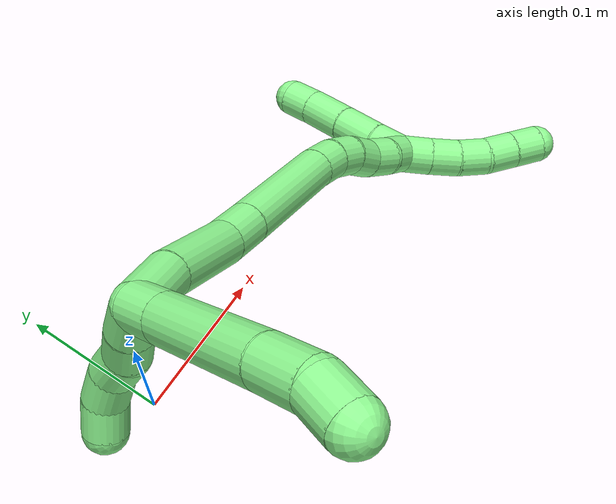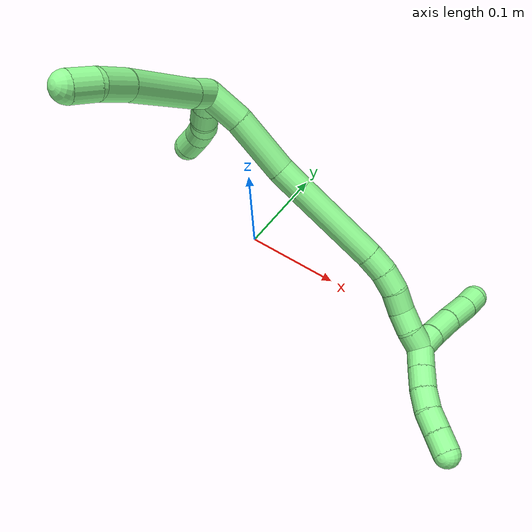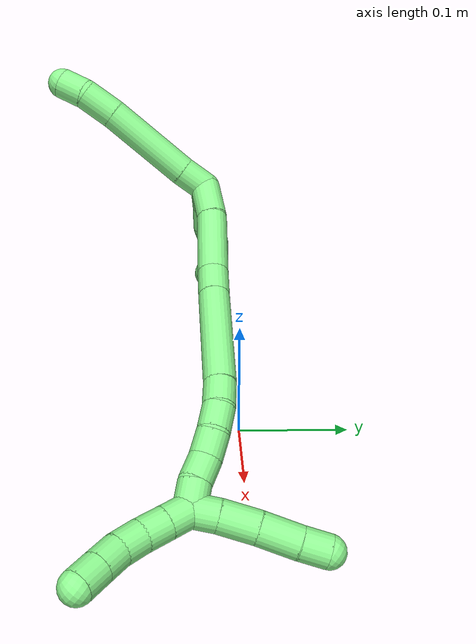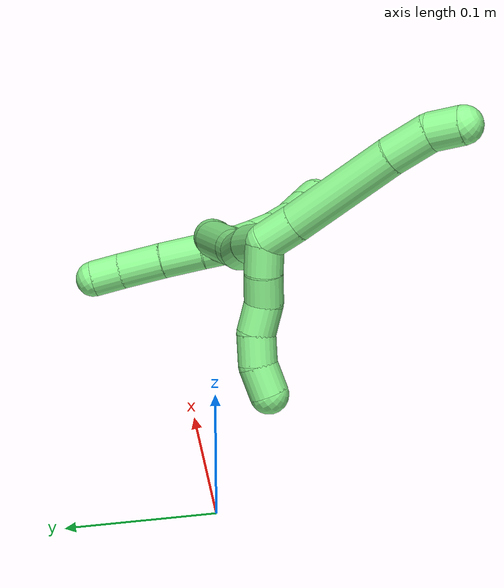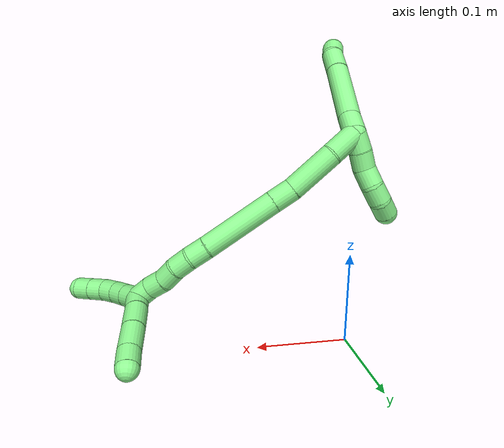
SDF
<sdf version="1.7">
 <world name="default">
  <model name="13">
   <static>0</static>
   <link name="13">
    <collision name="collision-cylinder-e_1_2_8">
     <pose>0.001093 -0.000503 0.011849 0.042415 0.091886 0.00195</pose>
     <geometry><cylinder><radius>0.0125</radius><length>0.02382</length></cylinder></geometry>
     <surface>
      <friction><ode><mu>1.16</mu><mu2>1.16</mu2><slip1>0</slip1><slip2>0</slip2></ode></friction>
      <contact><ode><kp>1e+06</kp><kd>1</kd><max_vel>0</max_vel><min_depth>0.001</min_depth></ode></contact>
     </surface>
    </collision>
    <visual name="visual-cylinder-e_1_2_8">
     <pose>0.001093 -0.000503 0.011849 0.042415 0.091886 0.00195</pose>
     <geometry><cylinder><radius>0.0125</radius><length>0.02382</length></cylinder></geometry>
     <material><ambient>0.564706 0.984314 0.572549 1</ambient></material>
    </visual>
    <collision name="collision-cylinder-e_2_8_9">
     <pose>0.004259 -0.000279 0.061245 -0.019352 0.055145 -0.000534</pose>
     <geometry><cylinder><radius>0.0125</radius><length>0.075223</length></cylinder></geometry>
     <surface>
      <friction><ode><mu>1.16</mu><mu2>1.16</mu2><slip1>0</slip1><slip2>0</slip2></ode></friction>
      <contact><ode><kp>1e+06</kp><kd>1</kd><max_vel>0</max_vel><min_depth>0.001</min_depth></ode></contact>
     </surface>
    </collision>
    <visual name="visual-cylinder-e_2_8_9">
     <pose>0.004259 -0.000279 0.061245 -0.019352 0.055145 -0.000534</pose>
     <geometry><cylinder><radius>0.0125</radius><length>0.075223</length></cylinder></geometry>
     <material><ambient>0.564706 0.984314 0.572549 1</ambient></material>
    </visual>
    <collision name="collision-cylinder-e_3_9_10">
     <pose>0.007328 -0.000337 0.11323 0.05432 0.06877 0.001869</pose>
     <geometry><cylinder><radius>0.0125</radius><length>0.028986</length></cylinder></geometry>
     <surface>
      <friction><ode><mu>1.16</mu><mu2>1.16</mu2><slip1>0</slip1><slip2>0</slip2></ode></friction>
      <contact><ode><kp>1e+06</kp><kd>1</kd><max_vel>0</max_vel><min_depth>0.001</min_depth></ode></contact>
     </surface>
    </collision>
    <visual name="visual-cylinder-e_3_9_10">
     <pose>0.007328 -0.000337 0.11323 0.05432 0.06877 0.001869</pose>
     <geometry><cylinder><radius>0.0125</radius><length>0.028986</length></cylinder></geometry>
     <material><ambient>0.564706 0.984314 0.572549 1</ambient></material>
    </visual>
    <collision name="collision-cylinder-e_4_10_6">
     <pose>0.006754 -0.004394 0.138037 0.305619 -0.14335 -0.022114</pose>
     <geometry><cylinder><radius>0.0125</radius><length>0.021971</length></cylinder></geometry>
     <surface>
      <friction><ode><mu>1.16</mu><mu2>1.16</mu2><slip1>0</slip1><slip2>0</slip2></ode></friction>
      <contact><ode><kp>1e+06</kp><kd>1</kd><max_vel>0</max_vel><min_depth>0.001</min_depth></ode></contact>
     </surface>
    </collision>
    <visual name="visual-cylinder-e_4_10_6">
     <pose>0.006754 -0.004394 0.138037 0.305619 -0.14335 -0.022114</pose>
     <geometry><cylinder><radius>0.0125</radius><length>0.021971</length></cylinder></geometry>
     <material><ambient>0.564706 0.984314 0.572549 1</ambient></material>
    </visual>
    <collision name="collision-cylinder-e_1_2_11">
     <pose>-0.002801 -0.007389 -0.006129 2.26324 -0.283888 -0.59061</pose>
     <geometry><cylinder><radius>0.0125</radius><length>0.02</length></cylinder></geometry>
     <surface>
      <friction><ode><mu>1.16</mu><mu2>1.16</mu2><slip1>0</slip1><slip2>0</slip2></ode></friction>
      <contact><ode><kp>1e+06</kp><kd>1</kd><max_vel>0</max_vel><min_depth>0.001</min_depth></ode></contact>
     </surface>
    </collision>
    <visual name="visual-cylinder-e_1_2_11">
     <pose>-0.002801 -0.007389 -0.006129 2.26324 -0.283888 -0.59061</pose>
     <geometry><cylinder><radius>0.0125</radius><length>0.02</length></cylinder></geometry>
     <material><ambient>0.564706 0.984314 0.572549 1</ambient></material>
    </visual>
    <collision name="collision-cylinder-e_2_11_12">
     <pose>-0.007523 -0.022636 -0.018135 2.21299 -0.19336 -0.382562</pose>
     <geometry><cylinder><radius>0.0125</radius><length>0.02</length></cylinder></geometry>
     <surface>
      <friction><ode><mu>1.16</mu><mu2>1.16</mu2><slip1>0</slip1><slip2>0</slip2></ode></friction>
      <contact><ode><kp>1e+06</kp><kd>1</kd><max_vel>0</max_vel><min_depth>0.001</min_depth></ode></contact>
     </surface>
    </collision>
    <visual name="visual-cylinder-e_2_11_12">
     <pose>-0.007523 -0.022636 -0.018135 2.21299 -0.19336 -0.382562</pose>
     <geometry><cylinder><radius>0.0125</radius><length>0.02</length></cylinder></geometry>
     <material><ambient>0.564706 0.984314 0.572549 1</ambient></material>
    </visual>
    <collision name="collision-cylinder-e_3_12_13">
     <pose>-0.013139 -0.036199 -0.031349 2.48068 -0.378342 -1.01813</pose>
     <geometry><cylinder><radius>0.0125</radius><length>0.02</length></cylinder></geometry>
     <surface>
      <friction><ode><mu>1.16</mu><mu2>1.16</mu2><slip1>0</slip1><slip2>0</slip2></ode></friction>
      <contact><ode><kp>1e+06</kp><kd>1</kd><max_vel>0</max_vel><min_depth>0.001</min_depth></ode></contact>
     </surface>
    </collision>
    <visual name="visual-cylinder-e_3_12_13">
     <pose>-0.013139 -0.036199 -0.031349 2.48068 -0.378342 -1.01813</pose>
     <geometry><cylinder><radius>0.0125</radius><length>0.02</length></cylinder></geometry>
     <material><ambient>0.564706 0.984314 0.572549 1</ambient></material>
    </visual>
    <collision name="collision-cylinder-e_4_13_14">
     <pose>-0.021056 -0.04948 -0.043662 2.15198 -0.436 -0.779125</pose>
     <geometry><cylinder><radius>0.0125</radius><length>0.02</length></cylinder></geometry>
     <surface>
      <friction><ode><mu>1.16</mu><mu2>1.16</mu2><slip1>0</slip1><slip2>0</slip2></ode></friction>
      <contact><ode><kp>1e+06</kp><kd>1</kd><max_vel>0</max_vel><min_depth>0.001</min_depth></ode></contact>
     </surface>
    </collision>
    <visual name="visual-cylinder-e_4_13_14">
     <pose>-0.021056 -0.04948 -0.043662 2.15198 -0.436 -0.779125</pose>
     <geometry><cylinder><radius>0.0125</radius><length>0.02</length></cylinder></geometry>
     <material><ambient>0.564706 0.984314 0.572549 1</ambient></material>
    </visual>
    <collision name="collision-cylinder-e_5_14_5">
     <pose>-0.029232 -0.065975 -0.050834 1.81223 -0.406388 -0.514212</pose>
     <geometry><cylinder><radius>0.0125</radius><length>0.02</length></cylinder></geometry>
     <surface>
      <friction><ode><mu>1.16</mu><mu2>1.16</mu2><slip1>0</slip1><slip2>0</slip2></ode></friction>
      <contact><ode><kp>1e+06</kp><kd>1</kd><max_vel>0</max_vel><min_depth>0.001</min_depth></ode></contact>
     </surface>
    </collision>
    <visual name="visual-cylinder-e_5_14_5">
     <pose>-0.029232 -0.065975 -0.050834 1.81223 -0.406388 -0.514212</pose>
     <geometry><cylinder><radius>0.0125</radius><length>0.02</length></cylinder></geometry>
     <material><ambient>0.564706 0.984314 0.572549 1</ambient></material>
    </visual>
    <collision name="collision-cylinder-e_1_2_15">
     <pose>0.013045 -0.003767 -0.010164 2.78662 0.877476 2.41135</pose>
     <geometry><cylinder><radius>0.0125</radius><length>0.033921</length></cylinder></geometry>
     <surface>
      <friction><ode><mu>1.16</mu><mu2>1.16</mu2><slip1>0</slip1><slip2>0</slip2></ode></friction>
      <contact><ode><kp>1e+06</kp><kd>1</kd><max_vel>0</max_vel><min_depth>0.001</min_depth></ode></contact>
     </surface>
    </collision>
    <visual name="visual-cylinder-e_1_2_15">
     <pose>0.013045 -0.003767 -0.010164 2.78662 0.877476 2.41135</pose>
     <geometry><cylinder><radius>0.0125</radius><length>0.033921</length></cylinder></geometry>
     <material><ambient>0.564706 0.984314 0.572549 1</ambient></material>
    </visual>
    <collision name="collision-cylinder-e_2_15_16">
     <pose>0.047834 -0.017489 -0.034395 2.52582 0.9006 1.9779</pose>
     <geometry><cylinder><radius>0.0125</radius><length>0.05549</length></cylinder></geometry>
     <surface>
      <friction><ode><mu>1.16</mu><mu2>1.16</mu2><slip1>0</slip1><slip2>0</slip2></ode></friction>
      <contact><ode><kp>1e+06</kp><kd>1</kd><max_vel>0</max_vel><min_depth>0.001</min_depth></ode></contact>
     </surface>
    </collision>
    <visual name="visual-cylinder-e_2_15_16">
     <pose>0.047834 -0.017489 -0.034395 2.52582 0.9006 1.9779</pose>
     <geometry><cylinder><radius>0.0125</radius><length>0.05549</length></cylinder></geometry>
     <material><ambient>0.564706 0.984314 0.572549 1</ambient></material>
    </visual>
    <collision name="collision-cylinder-e_3_16_17">
     <pose>0.080192 -0.030353 -0.054033 2.66005 1.0363 2.32825</pose>
     <geometry><cylinder><radius>0.0125</radius><length>0.024671</length></cylinder></geometry>
     <surface>
      <friction><ode><mu>1.16</mu><mu2>1.16</mu2><slip1>0</slip1><slip2>0</slip2></ode></friction>
      <contact><ode><kp>1e+06</kp><kd>1</kd><max_vel>0</max_vel><min_depth>0.001</min_depth></ode></contact>
     </surface>
    </collision>
    <visual name="visual-cylinder-e_3_16_17">
     <pose>0.080192 -0.030353 -0.054033 2.66005 1.0363 2.32825</pose>
     <geometry><cylinder><radius>0.0125</radius><length>0.024671</length></cylinder></geometry>
     <material><ambient>0.564706 0.984314 0.572549 1</ambient></material>
    </visual>
    <collision name="collision-cylinder-e_4_17_18">
     <pose>0.126958 -0.043073 -0.079482 2.68321 1.0207 2.3519</pose>
     <geometry><cylinder><radius>0.0125</radius><length>0.084813</length></cylinder></geometry>
     <surface>
      <friction><ode><mu>1.16</mu><mu2>1.16</mu2><slip1>0</slip1><slip2>0</slip2></ode></friction>
      <contact><ode><kp>1e+06</kp><kd>1</kd><max_vel>0</max_vel><min_depth>0.001</min_depth></ode></contact>
     </surface>
    </collision>
    <visual name="visual-cylinder-e_4_17_18">
     <pose>0.126958 -0.043073 -0.079482 2.68321 1.0207 2.3519</pose>
     <geometry><cylinder><radius>0.0125</radius><length>0.084813</length></cylinder></geometry>
     <material><ambient>0.564706 0.984314 0.572549 1</ambient></material>
    </visual>
    <collision name="collision-cylinder-e_5_18_19">
     <pose>0.172205 -0.055899 -0.103515 2.51326 1.05717 2.12616</pose>
     <geometry><cylinder><radius>0.0125</radius><length>0.020888</length></cylinder></geometry>
     <surface>
      <friction><ode><mu>1.16</mu><mu2>1.16</mu2><slip1>0</slip1><slip2>0</slip2></ode></friction>
      <contact><ode><kp>1e+06</kp><kd>1</kd><max_vel>0</max_vel><min_depth>0.001</min_depth></ode></contact>
     </surface>
    </collision>
    <visual name="visual-cylinder-e_5_18_19">
     <pose>0.172205 -0.055899 -0.103515 2.51326 1.05717 2.12616</pose>
     <geometry><cylinder><radius>0.0125</radius><length>0.020888</length></cylinder></geometry>
     <material><ambient>0.564706 0.984314 0.572549 1</ambient></material>
    </visual>
    <collision name="collision-cylinder-e_6_19_20">
     <pose>0.189648 -0.063535 -0.110904 2.18218 0.976505 1.59154</pose>
     <geometry><cylinder><radius>0.0125</radius><length>0.020149</length></cylinder></geometry>
     <surface>
      <friction><ode><mu>1.16</mu><mu2>1.16</mu2><slip1>0</slip1><slip2>0</slip2></ode></friction>
      <contact><ode><kp>1e+06</kp><kd>1</kd><max_vel>0</max_vel><min_depth>0.001</min_depth></ode></contact>
     </surface>
    </collision>
    <visual name="visual-cylinder-e_6_19_20">
     <pose>0.189648 -0.063535 -0.110904 2.18218 0.976505 1.59154</pose>
     <geometry><cylinder><radius>0.0125</radius><length>0.020149</length></cylinder></geometry>
     <material><ambient>0.564706 0.984314 0.572549 1</ambient></material>
    </visual>
    <collision name="collision-cylinder-e_7_20_21">
     <pose>0.205064 -0.074539 -0.117281 2.02777 0.782096 1.16972</pose>
     <geometry><cylinder><radius>0.0125</radius><length>0.020059</length></cylinder></geometry>
     <surface>
      <friction><ode><mu>1.16</mu><mu2>1.16</mu2><slip1>0</slip1><slip2>0</slip2></ode></friction>
      <contact><ode><kp>1e+06</kp><kd>1</kd><max_vel>0</max_vel><min_depth>0.001</min_depth></ode></contact>
     </surface>
    </collision>
    <visual name="visual-cylinder-e_7_20_21">
     <pose>0.205064 -0.074539 -0.117281 2.02777 0.782096 1.16972</pose>
     <geometry><cylinder><radius>0.0125</radius><length>0.020059</length></cylinder></geometry>
     <material><ambient>0.564706 0.984314 0.572549 1</ambient></material>
    </visual>
    <collision name="collision-cylinder-e_8_21_22">
     <pose>0.220594 -0.086036 -0.121931 1.85807 1.00859 1.27225</pose>
     <geometry><cylinder><radius>0.0125</radius><length>0.020001</length></cylinder></geometry>
     <surface>
      <friction><ode><mu>1.16</mu><mu2>1.16</mu2><slip1>0</slip1><slip2>0</slip2></ode></friction>
      <contact><ode><kp>1e+06</kp><kd>1</kd><max_vel>0</max_vel><min_depth>0.001</min_depth></ode></contact>
     </surface>
    </collision>
    <visual name="visual-cylinder-e_8_21_22">
     <pose>0.220594 -0.086036 -0.121931 1.85807 1.00859 1.27225</pose>
     <geometry><cylinder><radius>0.0125</radius><length>0.020001</length></cylinder></geometry>
     <material><ambient>0.564706 0.984314 0.572549 1</ambient></material>
    </visual>
    <collision name="collision-cylinder-e_9_22_1">
     <pose>0.237087 -0.09591 -0.127032 2.21685 0.932209 1.58011</pose>
     <geometry><cylinder><radius>0.0125</radius><length>0.020008</length></cylinder></geometry>
     <surface>
      <friction><ode><mu>1.16</mu><mu2>1.16</mu2><slip1>0</slip1><slip2>0</slip2></ode></friction>
      <contact><ode><kp>1e+06</kp><kd>1</kd><max_vel>0</max_vel><min_depth>0.001</min_depth></ode></contact>
     </surface>
    </collision>
    <visual name="visual-cylinder-e_9_22_1">
     <pose>0.237087 -0.09591 -0.127032 2.21685 0.932209 1.58011</pose>
     <geometry><cylinder><radius>0.0125</radius><length>0.020008</length></cylinder></geometry>
     <material><ambient>0.564706 0.984314 0.572549 1</ambient></material>
    </visual>
    <collision name="collision-cylinder-e_1_1_23">
     <pose>0.24375 -0.096119 -0.139589 -2.67185 -0.135326 0.551956</pose>
     <geometry><cylinder><radius>0.0125</radius><length>0.020299</length></cylinder></geometry>
     <surface>
      <friction><ode><mu>1.16</mu><mu2>1.16</mu2><slip1>0</slip1><slip2>0</slip2></ode></friction>
      <contact><ode><kp>1e+06</kp><kd>1</kd><max_vel>0</max_vel><min_depth>0.001</min_depth></ode></contact>
     </surface>
    </collision>
    <visual name="visual-cylinder-e_1_1_23">
     <pose>0.24375 -0.096119 -0.139589 -2.67185 -0.135326 0.551956</pose>
     <geometry><cylinder><radius>0.0125</radius><length>0.020299</length></cylinder></geometry>
     <material><ambient>0.564706 0.984314 0.572549 1</ambient></material>
    </visual>
    <collision name="collision-cylinder-e_2_23_24">
     <pose>0.241442 -0.08587 -0.16168 -2.73204 -0.065511 0.312965</pose>
     <geometry><cylinder><radius>0.0125</radius><length>0.028676</length></cylinder></geometry>
     <surface>
      <friction><ode><mu>1.16</mu><mu2>1.16</mu2><slip1>0</slip1><slip2>0</slip2></ode></friction>
      <contact><ode><kp>1e+06</kp><kd>1</kd><max_vel>0</max_vel><min_depth>0.001</min_depth></ode></contact>
     </surface>
    </collision>
    <visual name="visual-cylinder-e_2_23_24">
     <pose>0.241442 -0.08587 -0.16168 -2.73204 -0.065511 0.312965</pose>
     <geometry><cylinder><radius>0.0125</radius><length>0.028676</length></cylinder></geometry>
     <material><ambient>0.564706 0.984314 0.572549 1</ambient></material>
    </visual>
    <collision name="collision-cylinder-e_3_24_25">
     <pose>0.239955 -0.074815 -0.188966 -2.77995 -0.036235 0.19758</pose>
     <geometry><cylinder><radius>0.0125</radius><length>0.030303</length></cylinder></geometry>
     <surface>
      <friction><ode><mu>1.16</mu><mu2>1.16</mu2><slip1>0</slip1><slip2>0</slip2></ode></friction>
      <contact><ode><kp>1e+06</kp><kd>1</kd><max_vel>0</max_vel><min_depth>0.001</min_depth></ode></contact>
     </surface>
    </collision>
    <visual name="visual-cylinder-e_3_24_25">
     <pose>0.239955 -0.074815 -0.188966 -2.77995 -0.036235 0.19758</pose>
     <geometry><cylinder><radius>0.0125</radius><length>0.030303</length></cylinder></geometry>
     <material><ambient>0.564706 0.984314 0.572549 1</ambient></material>
    </visual>
    <collision name="collision-cylinder-e_4_25_4">
     <pose>0.23836 -0.065639 -0.212703 -2.76202 -0.101117 0.515131</pose>
     <geometry><cylinder><radius>0.0125</radius><length>0.020723</length></cylinder></geometry>
     <surface>
      <friction><ode><mu>1.16</mu><mu2>1.16</mu2><slip1>0</slip1><slip2>0</slip2></ode></friction>
      <contact><ode><kp>1e+06</kp><kd>1</kd><max_vel>0</max_vel><min_depth>0.001</min_depth></ode></contact>
     </surface>
    </collision>
    <visual name="visual-cylinder-e_4_25_4">
     <pose>0.23836 -0.065639 -0.212703 -2.76202 -0.101117 0.515131</pose>
     <geometry><cylinder><radius>0.0125</radius><length>0.020723</length></cylinder></geometry>
     <material><ambient>0.564706 0.984314 0.572549 1</ambient></material>
    </visual>
    <collision name="collision-cylinder-e_1_1_26">
     <pose>0.252368 -0.105849 -0.126077 0.85046 0.810778 0.383913</pose>
     <geometry><cylinder><radius>0.0125</radius><length>0.02</length></cylinder></geometry>
     <surface>
      <friction><ode><mu>1.16</mu><mu2>1.16</mu2><slip1>0</slip1><slip2>0</slip2></ode></friction>
      <contact><ode><kp>1e+06</kp><kd>1</kd><max_vel>0</max_vel><min_depth>0.001</min_depth></ode></contact>
     </surface>
    </collision>
    <visual name="visual-cylinder-e_1_1_26">
     <pose>0.252368 -0.105849 -0.126077 0.85046 0.810778 0.383913</pose>
     <geometry><cylinder><radius>0.0125</radius><length>0.02</length></cylinder></geometry>
     <material><ambient>0.564706 0.984314 0.572549 1</ambient></material>
    </visual>
    <collision name="collision-cylinder-e_2_26_27">
     <pose>0.26703 -0.11592 -0.116939 0.816916 0.835066 0.379377</pose>
     <geometry><cylinder><radius>0.0125</radius><length>0.02</length></cylinder></geometry>
     <surface>
      <friction><ode><mu>1.16</mu><mu2>1.16</mu2><slip1>0</slip1><slip2>0</slip2></ode></friction>
      <contact><ode><kp>1e+06</kp><kd>1</kd><max_vel>0</max_vel><min_depth>0.001</min_depth></ode></contact>
     </surface>
    </collision>
    <visual name="visual-cylinder-e_2_26_27">
     <pose>0.26703 -0.11592 -0.116939 0.816916 0.835066 0.379377</pose>
     <geometry><cylinder><radius>0.0125</radius><length>0.02</length></cylinder></geometry>
     <material><ambient>0.564706 0.984314 0.572549 1</ambient></material>
    </visual>
    <collision name="collision-cylinder-e_3_27_28">
     <pose>0.282667 -0.124816 -0.108303 0.780512 0.9656 0.42474</pose>
     <geometry><cylinder><radius>0.0125</radius><length>0.02</length></cylinder></geometry>
     <surface>
      <friction><ode><mu>1.16</mu><mu2>1.16</mu2><slip1>0</slip1><slip2>0</slip2></ode></friction>
      <contact><ode><kp>1e+06</kp><kd>1</kd><max_vel>0</max_vel><min_depth>0.001</min_depth></ode></contact>
     </surface>
    </collision>
    <visual name="visual-cylinder-e_3_27_28">
     <pose>0.282667 -0.124816 -0.108303 0.780512 0.9656 0.42474</pose>
     <geometry><cylinder><radius>0.0125</radius><length>0.02</length></cylinder></geometry>
     <material><ambient>0.564706 0.984314 0.572549 1</ambient></material>
    </visual>
    <collision name="collision-cylinder-e_4_28_29">
     <pose>0.300062 -0.131816 -0.101634 0.85132 1.16091 0.578021</pose>
     <geometry><cylinder><radius>0.0125</radius><length>0.02</length></cylinder></geometry>
     <surface>
      <friction><ode><mu>1.16</mu><mu2>1.16</mu2><slip1>0</slip1><slip2>0</slip2></ode></friction>
      <contact><ode><kp>1e+06</kp><kd>1</kd><max_vel>0</max_vel><min_depth>0.001</min_depth></ode></contact>
     </surface>
    </collision>
    <visual name="visual-cylinder-e_4_28_29">
     <pose>0.300062 -0.131816 -0.101634 0.85132 1.16091 0.578021</pose>
     <geometry><cylinder><radius>0.0125</radius><length>0.02</length></cylinder></geometry>
     <material><ambient>0.564706 0.984314 0.572549 1</ambient></material>
    </visual>
    <collision name="collision-cylinder-e_5_29_3">
     <pose>0.318421 -0.13784 -0.09647 0.872849 1.16475 0.596041</pose>
     <geometry><cylinder><radius>0.0125</radius><length>0.02</length></cylinder></geometry>
     <surface>
      <friction><ode><mu>1.16</mu><mu2>1.16</mu2><slip1>0</slip1><slip2>0</slip2></ode></friction>
      <contact><ode><kp>1e+06</kp><kd>1</kd><max_vel>0</max_vel><min_depth>0.001</min_depth></ode></contact>
     </surface>
    </collision>
    <visual name="visual-cylinder-e_5_29_3">
     <pose>0.318421 -0.13784 -0.09647 0.872849 1.16475 0.596041</pose>
     <geometry><cylinder><radius>0.0125</radius><length>0.02</length></cylinder></geometry>
     <material><ambient>0.564706 0.984314 0.572549 1</ambient></material>
    </visual>
    <collision name="collision-sphere-3">
     <pose>0.327608 -0.140866 -0.093931 0 -0 0</pose>
     <geometry><sphere><radius>0.0125</radius></sphere></geometry>
     <surface>
      <friction><ode><mu>1.16</mu><mu2>1.16</mu2><slip1>0</slip1><slip2>0</slip2></ode></friction>
      <contact><ode><kp>1e+06</kp><kd>1</kd><max_vel>0</max_vel><min_depth>0.001</min_depth></ode></contact>
     </surface>
    </collision>
    <visual name="visual-sphere-3">
     <pose>0.327608 -0.140866 -0.093931 0 -0 0</pose>
     <geometry><sphere><radius>0.0125</radius></sphere></geometry>
     <material><ambient>0.564706 0.984314 0.572549 1</ambient></material>
    </visual>
    <collision name="collision-sphere-29">
     <pose>0.309234 -0.134814 -0.099008 0 -0 0</pose>
     <geometry><sphere><radius>0.0125</radius></sphere></geometry>
     <surface>
      <friction><ode><mu>1.16</mu><mu2>1.16</mu2><slip1>0</slip1><slip2>0</slip2></ode></friction>
      <contact><ode><kp>1e+06</kp><kd>1</kd><max_vel>0</max_vel><min_depth>0.001</min_depth></ode></contact>
     </surface>
    </collision>
    <visual name="visual-sphere-29">
     <pose>0.309234 -0.134814 -0.099008 0 -0 0</pose>
     <geometry><sphere><radius>0.0125</radius></sphere></geometry>
     <material><ambient>0.564706 0.984314 0.572549 1</ambient></material>
    </visual>
    <collision name="collision-sphere-28">
     <pose>0.290891 -0.128819 -0.10426 0 -0 0</pose>
     <geometry><sphere><radius>0.0125</radius></sphere></geometry>
     <surface>
      <friction><ode><mu>1.16</mu><mu2>1.16</mu2><slip1>0</slip1><slip2>0</slip2></ode></friction>
      <contact><ode><kp>1e+06</kp><kd>1</kd><max_vel>0</max_vel><min_depth>0.001</min_depth></ode></contact>
     </surface>
    </collision>
    <visual name="visual-sphere-28">
     <pose>0.290891 -0.128819 -0.10426 0 -0 0</pose>
     <geometry><sphere><radius>0.0125</radius></sphere></geometry>
     <material><ambient>0.564706 0.984314 0.572549 1</ambient></material>
    </visual>
    <collision name="collision-sphere-27">
     <pose>0.274443 -0.120812 -0.112345 0 -0 0</pose>
     <geometry><sphere><radius>0.0125</radius></sphere></geometry>
     <surface>
      <friction><ode><mu>1.16</mu><mu2>1.16</mu2><slip1>0</slip1><slip2>0</slip2></ode></friction>
      <contact><ode><kp>1e+06</kp><kd>1</kd><max_vel>0</max_vel><min_depth>0.001</min_depth></ode></contact>
     </surface>
    </collision>
    <visual name="visual-sphere-27">
     <pose>0.274443 -0.120812 -0.112345 0 -0 0</pose>
     <geometry><sphere><radius>0.0125</radius></sphere></geometry>
     <material><ambient>0.564706 0.984314 0.572549 1</ambient></material>
    </visual>
    <collision name="collision-sphere-26">
     <pose>0.259616 -0.111027 -0.121532 0 -0 0</pose>
     <geometry><sphere><radius>0.0125</radius></sphere></geometry>
     <surface>
      <friction><ode><mu>1.16</mu><mu2>1.16</mu2><slip1>0</slip1><slip2>0</slip2></ode></friction>
      <contact><ode><kp>1e+06</kp><kd>1</kd><max_vel>0</max_vel><min_depth>0.001</min_depth></ode></contact>
     </surface>
    </collision>
    <visual name="visual-sphere-26">
     <pose>0.259616 -0.111027 -0.121532 0 -0 0</pose>
     <geometry><sphere><radius>0.0125</radius></sphere></geometry>
     <material><ambient>0.564706 0.984314 0.572549 1</ambient></material>
    </visual>
    <collision name="collision-sphere-4">
     <pose>0.237314 -0.061819 -0.222277 0 -0 0</pose>
     <geometry><sphere><radius>0.0125</radius></sphere></geometry>
     <surface>
      <friction><ode><mu>1.16</mu><mu2>1.16</mu2><slip1>0</slip1><slip2>0</slip2></ode></friction>
      <contact><ode><kp>1e+06</kp><kd>1</kd><max_vel>0</max_vel><min_depth>0.001</min_depth></ode></contact>
     </surface>
    </collision>
    <visual name="visual-sphere-4">
     <pose>0.237314 -0.061819 -0.222277 0 -0 0</pose>
     <geometry><sphere><radius>0.0125</radius></sphere></geometry>
     <material><ambient>0.564706 0.984314 0.572549 1</ambient></material>
    </visual>
    <collision name="collision-sphere-25">
     <pose>0.239406 -0.069458 -0.203128 0 -0 0</pose>
     <geometry><sphere><radius>0.0125</radius></sphere></geometry>
     <surface>
      <friction><ode><mu>1.16</mu><mu2>1.16</mu2><slip1>0</slip1><slip2>0</slip2></ode></friction>
      <contact><ode><kp>1e+06</kp><kd>1</kd><max_vel>0</max_vel><min_depth>0.001</min_depth></ode></contact>
     </surface>
    </collision>
    <visual name="visual-sphere-25">
     <pose>0.239406 -0.069458 -0.203128 0 -0 0</pose>
     <geometry><sphere><radius>0.0125</radius></sphere></geometry>
     <material><ambient>0.564706 0.984314 0.572549 1</ambient></material>
    </visual>
    <collision name="collision-sphere-24">
     <pose>0.240504 -0.080173 -0.174804 0 -0 0</pose>
     <geometry><sphere><radius>0.0125</radius></sphere></geometry>
     <surface>
      <friction><ode><mu>1.16</mu><mu2>1.16</mu2><slip1>0</slip1><slip2>0</slip2></ode></friction>
      <contact><ode><kp>1e+06</kp><kd>1</kd><max_vel>0</max_vel><min_depth>0.001</min_depth></ode></contact>
     </surface>
    </collision>
    <visual name="visual-sphere-24">
     <pose>0.240504 -0.080173 -0.174804 0 -0 0</pose>
     <geometry><sphere><radius>0.0125</radius></sphere></geometry>
     <material><ambient>0.564706 0.984314 0.572549 1</ambient></material>
    </visual>
    <collision name="collision-sphere-23">
     <pose>0.242381 -0.091567 -0.148556 0 -0 0</pose>
     <geometry><sphere><radius>0.0125</radius></sphere></geometry>
     <surface>
      <friction><ode><mu>1.16</mu><mu2>1.16</mu2><slip1>0</slip1><slip2>0</slip2></ode></friction>
      <contact><ode><kp>1e+06</kp><kd>1</kd><max_vel>0</max_vel><min_depth>0.001</min_depth></ode></contact>
     </surface>
    </collision>
    <visual name="visual-sphere-23">
     <pose>0.242381 -0.091567 -0.148556 0 -0 0</pose>
     <geometry><sphere><radius>0.0125</radius></sphere></geometry>
     <material><ambient>0.564706 0.984314 0.572549 1</ambient></material>
    </visual>
    <collision name="collision-sphere-1">
     <pose>0.24512 -0.100671 -0.130621 0 -0 0</pose>
     <geometry><sphere><radius>0.0125</radius></sphere></geometry>
     <surface>
      <friction><ode><mu>1.16</mu><mu2>1.16</mu2><slip1>0</slip1><slip2>0</slip2></ode></friction>
      <contact><ode><kp>1e+06</kp><kd>1</kd><max_vel>0</max_vel><min_depth>0.001</min_depth></ode></contact>
     </surface>
    </collision>
    <visual name="visual-sphere-1">
     <pose>0.24512 -0.100671 -0.130621 0 -0 0</pose>
     <geometry><sphere><radius>0.0125</radius></sphere></geometry>
     <material><ambient>0.564706 0.984314 0.572549 1</ambient></material>
    </visual>
    <collision name="collision-sphere-22">
     <pose>0.229055 -0.091149 -0.123442 0 -0 0</pose>
     <geometry><sphere><radius>0.0125</radius></sphere></geometry>
     <surface>
      <friction><ode><mu>1.16</mu><mu2>1.16</mu2><slip1>0</slip1><slip2>0</slip2></ode></friction>
      <contact><ode><kp>1e+06</kp><kd>1</kd><max_vel>0</max_vel><min_depth>0.001</min_depth></ode></contact>
     </surface>
    </collision>
    <visual name="visual-sphere-22">
     <pose>0.229055 -0.091149 -0.123442 0 -0 0</pose>
     <geometry><sphere><radius>0.0125</radius></sphere></geometry>
     <material><ambient>0.564706 0.984314 0.572549 1</ambient></material>
    </visual>
    <collision name="collision-sphere-21">
     <pose>0.212132 -0.080924 -0.120421 0 -0 0</pose>
     <geometry><sphere><radius>0.0125</radius></sphere></geometry>
     <surface>
      <friction><ode><mu>1.16</mu><mu2>1.16</mu2><slip1>0</slip1><slip2>0</slip2></ode></friction>
      <contact><ode><kp>1e+06</kp><kd>1</kd><max_vel>0</max_vel><min_depth>0.001</min_depth></ode></contact>
     </surface>
    </collision>
    <visual name="visual-sphere-21">
     <pose>0.212132 -0.080924 -0.120421 0 -0 0</pose>
     <geometry><sphere><radius>0.0125</radius></sphere></geometry>
     <material><ambient>0.564706 0.984314 0.572549 1</ambient></material>
    </visual>
    <collision name="collision-sphere-11">
     <pose>-0.005602 -0.014778 -0.012257 0 -0 0</pose>
     <geometry><sphere><radius>0.0125</radius></sphere></geometry>
     <surface>
      <friction><ode><mu>1.16</mu><mu2>1.16</mu2><slip1>0</slip1><slip2>0</slip2></ode></friction>
      <contact><ode><kp>1e+06</kp><kd>1</kd><max_vel>0</max_vel><min_depth>0.001</min_depth></ode></contact>
     </surface>
    </collision>
    <visual name="visual-sphere-11">
     <pose>-0.005602 -0.014778 -0.012257 0 -0 0</pose>
     <geometry><sphere><radius>0.0125</radius></sphere></geometry>
     <material><ambient>0.564706 0.984314 0.572549 1</ambient></material>
    </visual>
    <collision name="collision-sphere-6">
     <pose>0.005185 -0.007665 0.148406 0 -0 0</pose>
     <geometry><sphere><radius>0.0125</radius></sphere></geometry>
     <surface>
      <friction><ode><mu>1.16</mu><mu2>1.16</mu2><slip1>0</slip1><slip2>0</slip2></ode></friction>
      <contact><ode><kp>1e+06</kp><kd>1</kd><max_vel>0</max_vel><min_depth>0.001</min_depth></ode></contact>
     </surface>
    </collision>
    <visual name="visual-sphere-6">
     <pose>0.005185 -0.007665 0.148406 0 -0 0</pose>
     <geometry><sphere><radius>0.0125</radius></sphere></geometry>
     <material><ambient>0.564706 0.984314 0.572549 1</ambient></material>
    </visual>
    <collision name="collision-sphere-10">
     <pose>0.008323 -0.001122 0.127668 0 -0 0</pose>
     <geometry><sphere><radius>0.0125</radius></sphere></geometry>
     <surface>
      <friction><ode><mu>1.16</mu><mu2>1.16</mu2><slip1>0</slip1><slip2>0</slip2></ode></friction>
      <contact><ode><kp>1e+06</kp><kd>1</kd><max_vel>0</max_vel><min_depth>0.001</min_depth></ode></contact>
     </surface>
    </collision>
    <visual name="visual-sphere-10">
     <pose>0.008323 -0.001122 0.127668 0 -0 0</pose>
     <geometry><sphere><radius>0.0125</radius></sphere></geometry>
     <material><ambient>0.564706 0.984314 0.572549 1</ambient></material>
    </visual>
    <collision name="collision-sphere-9">
     <pose>0.006332 0.000448 0.098793 0 -0 0</pose>
     <geometry><sphere><radius>0.0125</radius></sphere></geometry>
     <surface>
      <friction><ode><mu>1.16</mu><mu2>1.16</mu2><slip1>0</slip1><slip2>0</slip2></ode></friction>
      <contact><ode><kp>1e+06</kp><kd>1</kd><max_vel>0</max_vel><min_depth>0.001</min_depth></ode></contact>
     </surface>
    </collision>
    <visual name="visual-sphere-9">
     <pose>0.006332 0.000448 0.098793 0 -0 0</pose>
     <geometry><sphere><radius>0.0125</radius></sphere></geometry>
     <material><ambient>0.564706 0.984314 0.572549 1</ambient></material>
    </visual>
    <collision name="collision-sphere-2">
     <geometry><sphere><radius>0.0125</radius></sphere></geometry>
     <surface>
      <friction><ode><mu>1.16</mu><mu2>1.16</mu2><slip1>0</slip1><slip2>0</slip2></ode></friction>
      <contact><ode><kp>1e+06</kp><kd>1</kd><max_vel>0</max_vel><min_depth>0.001</min_depth></ode></contact>
     </surface>
    </collision>
    <visual name="visual-sphere-2">
     <geometry><sphere><radius>0.0125</radius></sphere></geometry>
     <material><ambient>0.564706 0.984314 0.572549 1</ambient></material>
    </visual>
    <collision name="collision-sphere-19">
     <pose>0.181301 -0.058916 -0.107666 0 -0 0</pose>
     <geometry><sphere><radius>0.0125</radius></sphere></geometry>
     <surface>
      <friction><ode><mu>1.16</mu><mu2>1.16</mu2><slip1>0</slip1><slip2>0</slip2></ode></friction>
      <contact><ode><kp>1e+06</kp><kd>1</kd><max_vel>0</max_vel><min_depth>0.001</min_depth></ode></contact>
     </surface>
    </collision>
    <visual name="visual-sphere-19">
     <pose>0.181301 -0.058916 -0.107666 0 -0 0</pose>
     <geometry><sphere><radius>0.0125</radius></sphere></geometry>
     <material><ambient>0.564706 0.984314 0.572549 1</ambient></material>
    </visual>
    <collision name="collision-sphere-8">
     <pose>0.002186 -0.001006 0.023698 0 -0 0</pose>
     <geometry><sphere><radius>0.0125</radius></sphere></geometry>
     <surface>
      <friction><ode><mu>1.16</mu><mu2>1.16</mu2><slip1>0</slip1><slip2>0</slip2></ode></friction>
      <contact><ode><kp>1e+06</kp><kd>1</kd><max_vel>0</max_vel><min_depth>0.001</min_depth></ode></contact>
     </surface>
    </collision>
    <visual name="visual-sphere-8">
     <pose>0.002186 -0.001006 0.023698 0 -0 0</pose>
     <geometry><sphere><radius>0.0125</radius></sphere></geometry>
     <material><ambient>0.564706 0.984314 0.572549 1</ambient></material>
    </visual>
    <collision name="collision-sphere-12">
     <pose>-0.009445 -0.030495 -0.024013 0 -0 0</pose>
     <geometry><sphere><radius>0.0125</radius></sphere></geometry>
     <surface>
      <friction><ode><mu>1.16</mu><mu2>1.16</mu2><slip1>0</slip1><slip2>0</slip2></ode></friction>
      <contact><ode><kp>1e+06</kp><kd>1</kd><max_vel>0</max_vel><min_depth>0.001</min_depth></ode></contact>
     </surface>
    </collision>
    <visual name="visual-sphere-12">
     <pose>-0.009445 -0.030495 -0.024013 0 -0 0</pose>
     <geometry><sphere><radius>0.0125</radius></sphere></geometry>
     <material><ambient>0.564706 0.984314 0.572549 1</ambient></material>
    </visual>
    <collision name="collision-sphere-13">
     <pose>-0.016833 -0.041903 -0.038685 0 -0 0</pose>
     <geometry><sphere><radius>0.0125</radius></sphere></geometry>
     <surface>
      <friction><ode><mu>1.16</mu><mu2>1.16</mu2><slip1>0</slip1><slip2>0</slip2></ode></friction>
      <contact><ode><kp>1e+06</kp><kd>1</kd><max_vel>0</max_vel><min_depth>0.001</min_depth></ode></contact>
     </surface>
    </collision>
    <visual name="visual-sphere-13">
     <pose>-0.016833 -0.041903 -0.038685 0 -0 0</pose>
     <geometry><sphere><radius>0.0125</radius></sphere></geometry>
     <material><ambient>0.564706 0.984314 0.572549 1</ambient></material>
    </visual>
    <collision name="collision-sphere-14">
     <pose>-0.025279 -0.057056 -0.048638 0 -0 0</pose>
     <geometry><sphere><radius>0.0125</radius></sphere></geometry>
     <surface>
      <friction><ode><mu>1.16</mu><mu2>1.16</mu2><slip1>0</slip1><slip2>0</slip2></ode></friction>
      <contact><ode><kp>1e+06</kp><kd>1</kd><max_vel>0</max_vel><min_depth>0.001</min_depth></ode></contact>
     </surface>
    </collision>
    <visual name="visual-sphere-14">
     <pose>-0.025279 -0.057056 -0.048638 0 -0 0</pose>
     <geometry><sphere><radius>0.0125</radius></sphere></geometry>
     <material><ambient>0.564706 0.984314 0.572549 1</ambient></material>
    </visual>
    <collision name="collision-sphere-5">
     <pose>-0.033185 -0.074894 -0.053031 0 -0 0</pose>
     <geometry><sphere><radius>0.0125</radius></sphere></geometry>
     <surface>
      <friction><ode><mu>1.16</mu><mu2>1.16</mu2><slip1>0</slip1><slip2>0</slip2></ode></friction>
      <contact><ode><kp>1e+06</kp><kd>1</kd><max_vel>0</max_vel><min_depth>0.001</min_depth></ode></contact>
     </surface>
    </collision>
    <visual name="visual-sphere-5">
     <pose>-0.033185 -0.074894 -0.053031 0 -0 0</pose>
     <geometry><sphere><radius>0.0125</radius></sphere></geometry>
     <material><ambient>0.564706 0.984314 0.572549 1</ambient></material>
    </visual>
    <collision name="collision-sphere-15">
     <pose>0.02609 -0.007535 -0.020327 0 -0 0</pose>
     <geometry><sphere><radius>0.0125</radius></sphere></geometry>
     <surface>
      <friction><ode><mu>1.16</mu><mu2>1.16</mu2><slip1>0</slip1><slip2>0</slip2></ode></friction>
      <contact><ode><kp>1e+06</kp><kd>1</kd><max_vel>0</max_vel><min_depth>0.001</min_depth></ode></contact>
     </surface>
    </collision>
    <visual name="visual-sphere-15">
     <pose>0.02609 -0.007535 -0.020327 0 -0 0</pose>
     <geometry><sphere><radius>0.0125</radius></sphere></geometry>
     <material><ambient>0.564706 0.984314 0.572549 1</ambient></material>
    </visual>
    <collision name="collision-sphere-16">
     <pose>0.069577 -0.027443 -0.048464 0 -0 0</pose>
     <geometry><sphere><radius>0.0125</radius></sphere></geometry>
     <surface>
      <friction><ode><mu>1.16</mu><mu2>1.16</mu2><slip1>0</slip1><slip2>0</slip2></ode></friction>
      <contact><ode><kp>1e+06</kp><kd>1</kd><max_vel>0</max_vel><min_depth>0.001</min_depth></ode></contact>
     </surface>
    </collision>
    <visual name="visual-sphere-16">
     <pose>0.069577 -0.027443 -0.048464 0 -0 0</pose>
     <geometry><sphere><radius>0.0125</radius></sphere></geometry>
     <material><ambient>0.564706 0.984314 0.572549 1</ambient></material>
    </visual>
    <collision name="collision-sphere-17">
     <pose>0.090807 -0.033263 -0.059602 0 -0 0</pose>
     <geometry><sphere><radius>0.0125</radius></sphere></geometry>
     <surface>
      <friction><ode><mu>1.16</mu><mu2>1.16</mu2><slip1>0</slip1><slip2>0</slip2></ode></friction>
      <contact><ode><kp>1e+06</kp><kd>1</kd><max_vel>0</max_vel><min_depth>0.001</min_depth></ode></contact>
     </surface>
    </collision>
    <visual name="visual-sphere-17">
     <pose>0.090807 -0.033263 -0.059602 0 -0 0</pose>
     <geometry><sphere><radius>0.0125</radius></sphere></geometry>
     <material><ambient>0.564706 0.984314 0.572549 1</ambient></material>
    </visual>
    <collision name="collision-sphere-18">
     <pose>0.163108 -0.052883 -0.099363 0 -0 0</pose>
     <geometry><sphere><radius>0.0125</radius></sphere></geometry>
     <surface>
      <friction><ode><mu>1.16</mu><mu2>1.16</mu2><slip1>0</slip1><slip2>0</slip2></ode></friction>
      <contact><ode><kp>1e+06</kp><kd>1</kd><max_vel>0</max_vel><min_depth>0.001</min_depth></ode></contact>
     </surface>
    </collision>
    <visual name="visual-sphere-18">
     <pose>0.163108 -0.052883 -0.099363 0 -0 0</pose>
     <geometry><sphere><radius>0.0125</radius></sphere></geometry>
     <material><ambient>0.564706 0.984314 0.572549 1</ambient></material>
    </visual>
    <collision name="collision-sphere-20">
     <pose>0.197995 -0.068154 -0.114142 0 -0 0</pose>
     <geometry><sphere><radius>0.0125</radius></sphere></geometry>
     <surface>
      <friction><ode><mu>1.16</mu><mu2>1.16</mu2><slip1>0</slip1><slip2>0</slip2></ode></friction>
      <contact><ode><kp>1e+06</kp><kd>1</kd><max_vel>0</max_vel><min_depth>0.001</min_depth></ode></contact>
     </surface>
    </collision>
    <visual name="visual-sphere-20">
     <pose>0.197995 -0.068154 -0.114142 0 -0 0</pose>
     <geometry><sphere><radius>0.0125</radius></sphere></geometry>
     <material><ambient>0.564706 0.984314 0.572549 1</ambient></material>
    </visual>
    <inertial>
     <pose>0.117674 -0.049629 -0.056597 0 -0 0</pose>
     <mass>0.75</mass>
     <inertia>
      <ixx>9.6e-05</ixx>
      <ixy>0</ixy>
      <ixz>0</ixz>
      <iyy>0.000136</iyy>
      <iyz>0</iyz>
      <izz>-5.5e-05</izz>
     </inertia>
    </inertial>
   </link>
   <pose>-0.009709 -0.030286 0.225693 0.892227 0.074638 -0.224345</pose>
  </model>
 </world>
</sdf>
